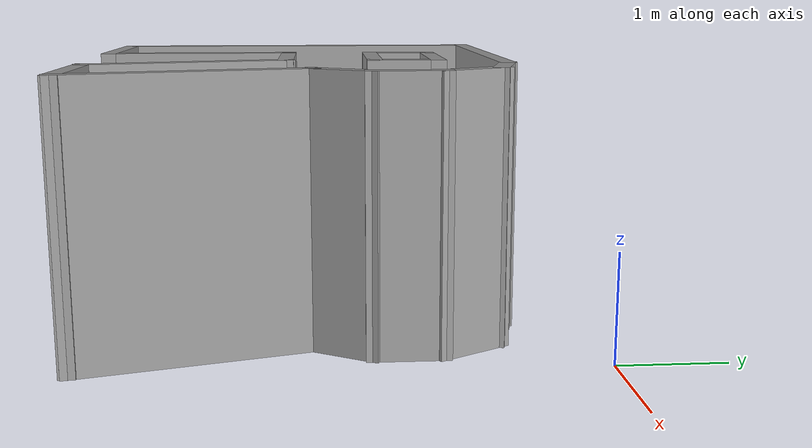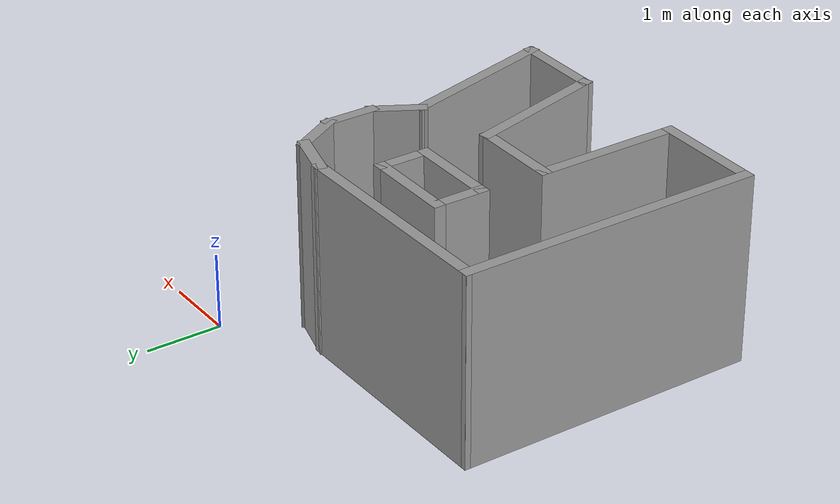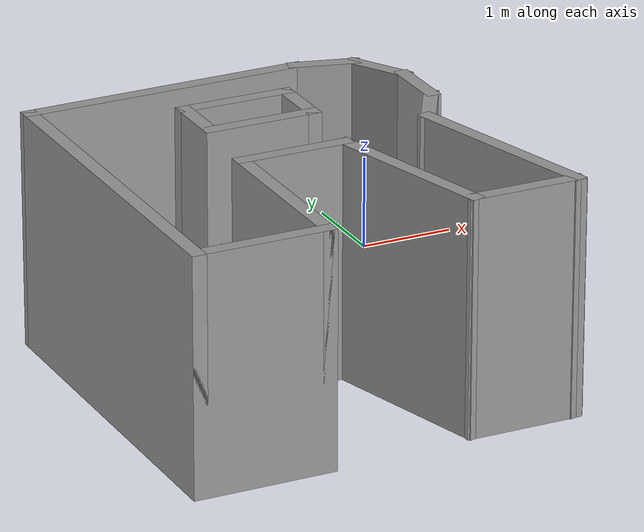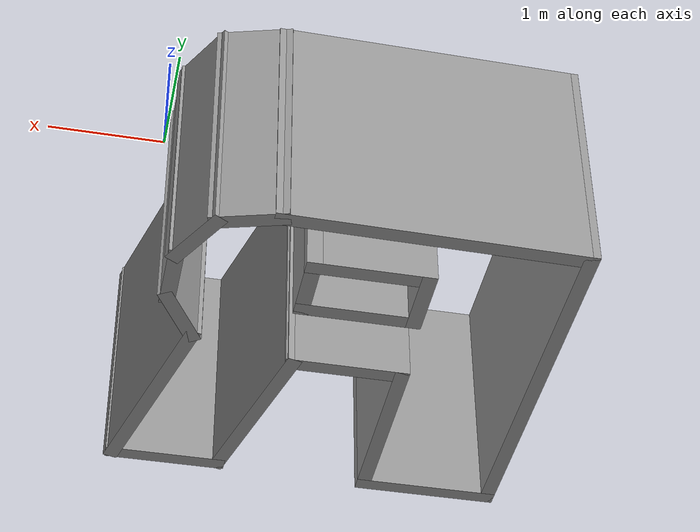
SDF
<?xml version='1.0'?>
<sdf version='1.6'>
  <model name='myworld'>
    <pose frame=''>-2.05763 -2.69857 0 0 -0 0</pose>
    <link name='Wall_1'>
      <collision name='Wall_1_Collision'>
        <geometry>
          <box>
            <size>4 0.15 2.5</size>
          </box>
        </geometry>
        <pose frame=''>0 0 1.25 0 -0 0</pose>
      </collision>
      <visual name='Wall_1_Visual'>
        <pose frame=''>0 0 1.25 0 -0 0</pose>
        <geometry>
          <box>
            <size>4 0.15 2.5</size>
          </box>
        </geometry>
        <material>
          <script>
            <uri>file://media/materials/scripts/gazebo.material</uri>
            <name>Gazebo/Grey</name>
          </script>
          <ambient>1 1 1 1</ambient>
        </material>
        <meta>
          <layer>0</layer>
        </meta>
      </visual>
      <pose frame=''>-2.02237 -0.026429 0 0 -0 -1.5708</pose>
    </link>
    <link name='Wall_10'>
      <collision name='Wall_10_Collision'>
        <geometry>
          <box>
            <size>0.75 0.15 2.5</size>
          </box>
        </geometry>
        <pose frame=''>0 0 1.25 0 -0 0</pose>
      </collision>
      <visual name='Wall_10_Visual'>
        <pose frame=''>0 0 1.25 0 -0 0</pose>
        <geometry>
          <box>
            <size>0.75 0.15 2.5</size>
          </box>
        </geometry>
        <material>
          <script>
            <uri>file://media/materials/scripts/gazebo.material</uri>
            <name>Gazebo/Grey</name>
          </script>
          <ambient>1 1 1 1</ambient>
        </material>
        <meta>
          <layer>0</layer>
        </meta>
      </visual>
      <pose frame=''>1.61292 1.51947 0 0 -0 2.0944</pose>
    </link>
    <link name='Wall_11'>
      <collision name='Wall_11_Collision'>
        <geometry>
          <box>
            <size>0.75 0.15 2.5</size>
          </box>
        </geometry>
        <pose frame=''>0 0 1.25 0 -0 0</pose>
      </collision>
      <visual name='Wall_11_Visual'>
        <pose frame=''>0 0 1.25 0 -0 0</pose>
        <geometry>
          <box>
            <size>0.75 0.15 2.5</size>
          </box>
        </geometry>
        <material>
          <script>
            <uri>file://media/materials/scripts/gazebo.material</uri>
            <name>Gazebo/Grey</name>
          </script>
          <ambient>1 1 1 1</ambient>
        </material>
        <meta>
          <layer>0</layer>
        </meta>
      </visual>
      <pose frame=''>1.17314 1.85693 0 0 -0 2.87979</pose>
    </link>
    <link name='Wall_12'>
      <collision name='Wall_12_Collision'>
        <geometry>
          <box>
            <size>3.05596 0.15 2.5</size>
          </box>
        </geometry>
        <pose frame=''>0 0 1.25 0 -0 0</pose>
      </collision>
      <visual name='Wall_12_Visual'>
        <pose frame=''>0 0 1.25 0 -0 0</pose>
        <geometry>
          <box>
            <size>3.05596 0.15 2.5</size>
          </box>
        </geometry>
        <material>
          <script>
            <uri>file://media/materials/scripts/gazebo.material</uri>
            <name>Gazebo/Grey</name>
          </script>
          <ambient>1 1 1 1</ambient>
        </material>
        <meta>
          <layer>0</layer>
        </meta>
      </visual>
      <pose frame=''>-0.569504 1.91657 0 0 -0 -3.1292</pose>
    </link>
    <link name='Wall_14'>
      <collision name='Wall_14_Collision'>
        <geometry>
          <box>
            <size>0.75 0.15 2.5</size>
          </box>
        </geometry>
        <pose frame=''>0 0 1.25 0 -0 0</pose>
      </collision>
      <visual name='Wall_14_Visual'>
        <pose frame=''>0 0 1.25 0 -0 0</pose>
        <geometry>
          <box>
            <size>0.75 0.15 2.5</size>
          </box>
        </geometry>
        <material>
          <script>
            <uri>file://media/materials/scripts/gazebo.material</uri>
            <name>Gazebo/Grey</name>
          </script>
          <ambient>1 1 1 1</ambient>
        </material>
        <meta>
          <layer>0</layer>
        </meta>
      </visual>
      <pose frame=''>-0.612374 1.03857 0 0 -0 -1.5708</pose>
    </link>
    <link name='Wall_15'>
      <collision name='Wall_15_Collision'>
        <geometry>
          <box>
            <size>1.25 0.15 2.5</size>
          </box>
        </geometry>
        <pose frame=''>0 0 1.25 0 -0 0</pose>
      </collision>
      <visual name='Wall_15_Visual'>
        <pose frame=''>0 0 1.25 0 -0 0</pose>
        <geometry>
          <box>
            <size>1.25 0.15 2.5</size>
          </box>
        </geometry>
        <material>
          <script>
            <uri>file://media/materials/scripts/gazebo.material</uri>
            <name>Gazebo/Grey</name>
          </script>
          <ambient>1 1 1 1</ambient>
        </material>
        <meta>
          <layer>0</layer>
        </meta>
      </visual>
      <pose frame=''>-0.062374 0.738571 0 0 -0 0</pose>
    </link>
    <link name='Wall_16'>
      <collision name='Wall_16_Collision'>
        <geometry>
          <box>
            <size>0.75 0.15 2.5</size>
          </box>
        </geometry>
        <pose frame=''>0 0 1.25 0 -0 0</pose>
      </collision>
      <visual name='Wall_16_Visual'>
        <pose frame=''>0 0 1.25 0 -0 0</pose>
        <geometry>
          <box>
            <size>0.75 0.15 2.5</size>
          </box>
        </geometry>
        <material>
          <script>
            <uri>file://media/materials/scripts/gazebo.material</uri>
            <name>Gazebo/Grey</name>
          </script>
          <ambient>1 1 1 1</ambient>
        </material>
        <meta>
          <layer>0</layer>
        </meta>
      </visual>
      <pose frame=''>0.487626 1.03857 0 0 -0 1.5708</pose>
    </link>
    <link name='Wall_17'>
      <collision name='Wall_17_Collision'>
        <geometry>
          <box>
            <size>1.25 0.15 2.5</size>
          </box>
        </geometry>
        <pose frame=''>0 0 1.25 0 -0 0</pose>
      </collision>
      <visual name='Wall_17_Visual'>
        <pose frame=''>0 0 1.25 0 -0 0</pose>
        <geometry>
          <box>
            <size>1.25 0.15 2.5</size>
          </box>
        </geometry>
        <material>
          <script>
            <uri>file://media/materials/scripts/gazebo.material</uri>
            <name>Gazebo/Grey</name>
          </script>
          <ambient>1 1 1 1</ambient>
        </material>
        <meta>
          <layer>0</layer>
        </meta>
      </visual>
      <pose frame=''>-0.062374 1.33857 0 0 -0 3.14159</pose>
    </link>
    <link name='Wall_2'>
      <collision name='Wall_2_Collision'>
        <geometry>
          <box>
            <size>1.5 0.15 2.5</size>
          </box>
        </geometry>
        <pose frame=''>0 0 1.25 0 -0 0</pose>
      </collision>
      <visual name='Wall_2_Visual'>
        <pose frame=''>0 0 1.25 0 -0 0</pose>
        <geometry>
          <box>
            <size>1.5 0.15 2.5</size>
          </box>
        </geometry>
        <material>
          <script>
            <uri>file://media/materials/scripts/gazebo.material</uri>
            <name>Gazebo/Grey</name>
          </script>
          <ambient>1 1 1 1</ambient>
        </material>
        <meta>
          <layer>0</layer>
        </meta>
      </visual>
      <pose frame=''>-1.34737 -1.95143 0 0 -0 0</pose>
    </link>
    <link name='Wall_3'>
      <collision name='Wall_3_Collision'>
        <geometry>
          <box>
            <size>2 0.15 2.5</size>
          </box>
        </geometry>
        <pose frame=''>0 0 1.25 0 -0 0</pose>
      </collision>
      <visual name='Wall_3_Visual'>
        <pose frame=''>0 0 1.25 0 -0 0</pose>
        <geometry>
          <box>
            <size>2 0.15 2.5</size>
          </box>
        </geometry>
        <material>
          <script>
            <uri>file://media/materials/scripts/gazebo.material</uri>
            <name>Gazebo/Grey</name>
          </script>
          <ambient>1 1 1 1</ambient>
        </material>
        <meta>
          <layer>0</layer>
        </meta>
      </visual>
      <pose frame=''>-0.672374 -1.02643 0 0 -0 1.5708</pose>
    </link>
    <link name='Wall_4'>
      <collision name='Wall_4_Collision'>
        <geometry>
          <box>
            <size>1.25 0.15 2.5</size>
          </box>
        </geometry>
        <pose frame=''>0 0 1.25 0 -0 0</pose>
      </collision>
      <visual name='Wall_4_Visual'>
        <pose frame=''>0 0 1.25 0 -0 0</pose>
        <geometry>
          <box>
            <size>1.25 0.15 2.5</size>
          </box>
        </geometry>
        <material>
          <script>
            <uri>file://media/materials/scripts/gazebo.material</uri>
            <name>Gazebo/Grey</name>
          </script>
          <ambient>1 1 1 1</ambient>
        </material>
        <meta>
          <layer>0</layer>
        </meta>
      </visual>
      <pose frame=''>-0.122374 -0.101429 0 0 -0 0</pose>
    </link>
    <link name='Wall_5'>
      <collision name='Wall_5_Collision'>
        <geometry>
          <box>
            <size>2 0.15 2.5</size>
          </box>
        </geometry>
        <pose frame=''>0 0 1.25 0 -0 0</pose>
      </collision>
      <visual name='Wall_5_Visual'>
        <pose frame=''>0 0 1.25 0 -0 0</pose>
        <geometry>
          <box>
            <size>2 0.15 2.5</size>
          </box>
        </geometry>
        <material>
          <script>
            <uri>file://media/materials/scripts/gazebo.material</uri>
            <name>Gazebo/Grey</name>
          </script>
          <ambient>1 1 1 1</ambient>
        </material>
        <meta>
          <layer>0</layer>
        </meta>
      </visual>
      <pose frame=''>0.667034 -0.994911 0 0 -0 -1.309</pose>
    </link>
    <link name='Wall_6'>
      <collision name='Wall_6_Collision'>
        <geometry>
          <box>
            <size>1.25 0.15 2.5</size>
          </box>
        </geometry>
        <pose frame=''>0 0 1.25 0 -0 0</pose>
      </collision>
      <visual name='Wall_6_Visual'>
        <pose frame=''>0 0 1.25 0 -0 0</pose>
        <geometry>
          <box>
            <size>1.25 0.15 2.5</size>
          </box>
        </geometry>
        <material>
          <script>
            <uri>file://media/materials/scripts/gazebo.material</uri>
            <name>Gazebo/Grey</name>
          </script>
          <ambient>1 1 1 1</ambient>
        </material>
        <meta>
          <layer>0</layer>
        </meta>
      </visual>
      <pose frame=''>1.45644 -1.88839 0 0 -0 0</pose>
    </link>
    <link name='Wall_7'>
      <collision name='Wall_7_Collision'>
        <geometry>
          <box>
            <size>2.25 0.15 2.5</size>
          </box>
        </geometry>
        <pose frame=''>0 0 1.25 0 -0 0</pose>
      </collision>
      <visual name='Wall_7_Visual'>
        <pose frame=''>0 0 1.25 0 -0 0</pose>
        <geometry>
          <box>
            <size>2.25 0.15 2.5</size>
          </box>
        </geometry>
        <material>
          <script>
            <uri>file://media/materials/scripts/gazebo.material</uri>
            <name>Gazebo/Grey</name>
          </script>
          <ambient>1 1 1 1</ambient>
        </material>
        <meta>
          <layer>0</layer>
        </meta>
      </visual>
      <pose frame=''>1.73468 -0.87417 0 0 -0 1.8326</pose>
    </link>
    <link name='Wall_8'>
      <collision name='Wall_8_Collision'>
        <geometry>
          <box>
            <size>0.75 0.15 2.5</size>
          </box>
        </geometry>
        <pose frame=''>0 0 1.25 0 -0 0</pose>
      </collision>
      <visual name='Wall_8_Visual'>
        <pose frame=''>0 0 1.25 0 -0 0</pose>
        <geometry>
          <box>
            <size>0.75 0.15 2.5</size>
          </box>
        </geometry>
        <material>
          <script>
            <uri>file://media/materials/scripts/gazebo.material</uri>
            <name>Gazebo/Grey</name>
          </script>
          <ambient>1 1 1 1</ambient>
        </material>
        <meta>
          <layer>0</layer>
        </meta>
      </visual>
      <pose frame=''>1.61292 0.39986 0 0 -0 1.0472</pose>
    </link>
    <link name='Wall_9'>
      <collision name='Wall_9_Collision'>
        <geometry>
          <box>
            <size>0.75 0.15 2.5</size>
          </box>
        </geometry>
        <pose frame=''>0 0 1.25 0 -0 0</pose>
      </collision>
      <visual name='Wall_9_Visual'>
        <pose frame=''>0 0 1.25 0 -0 0</pose>
        <geometry>
          <box>
            <size>0.75 0.15 2.5</size>
          </box>
        </geometry>
        <material>
          <script>
            <uri>file://media/materials/scripts/gazebo.material</uri>
            <name>Gazebo/Grey</name>
          </script>
          <ambient>1 1 1 1</ambient>
        </material>
        <meta>
          <layer>0</layer>
        </meta>
      </visual>
      <pose frame=''>1.76292 0.959667 0 0 -0 1.5708</pose>
    </link>
    <static>1</static>
  </model>
</sdf>
